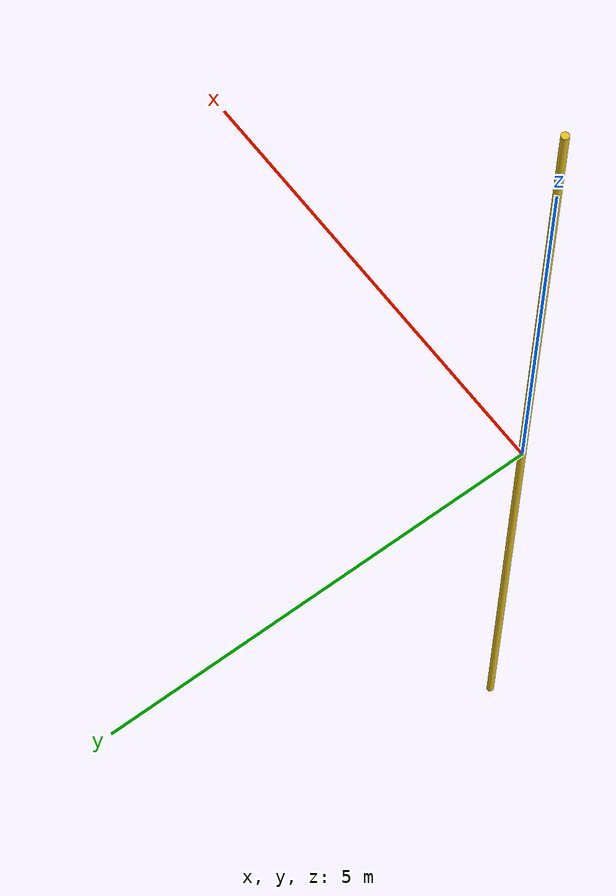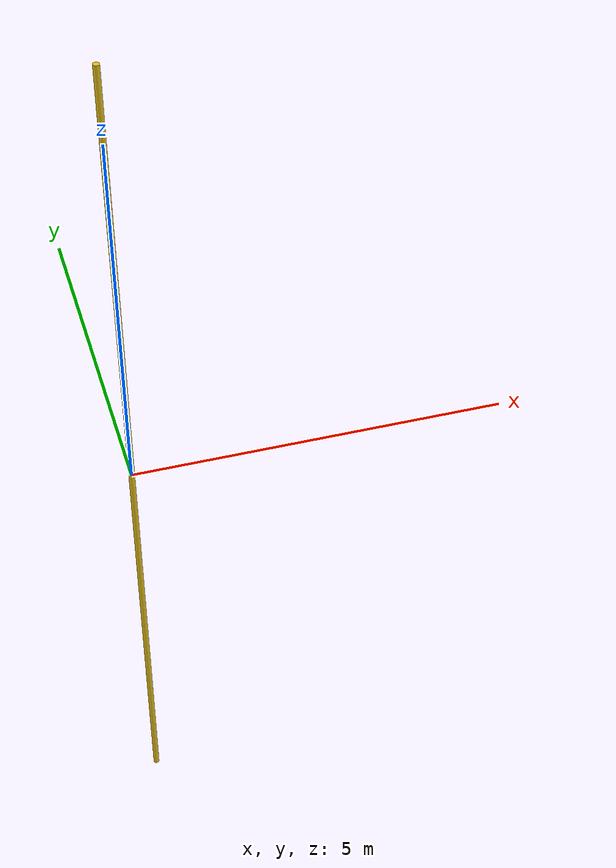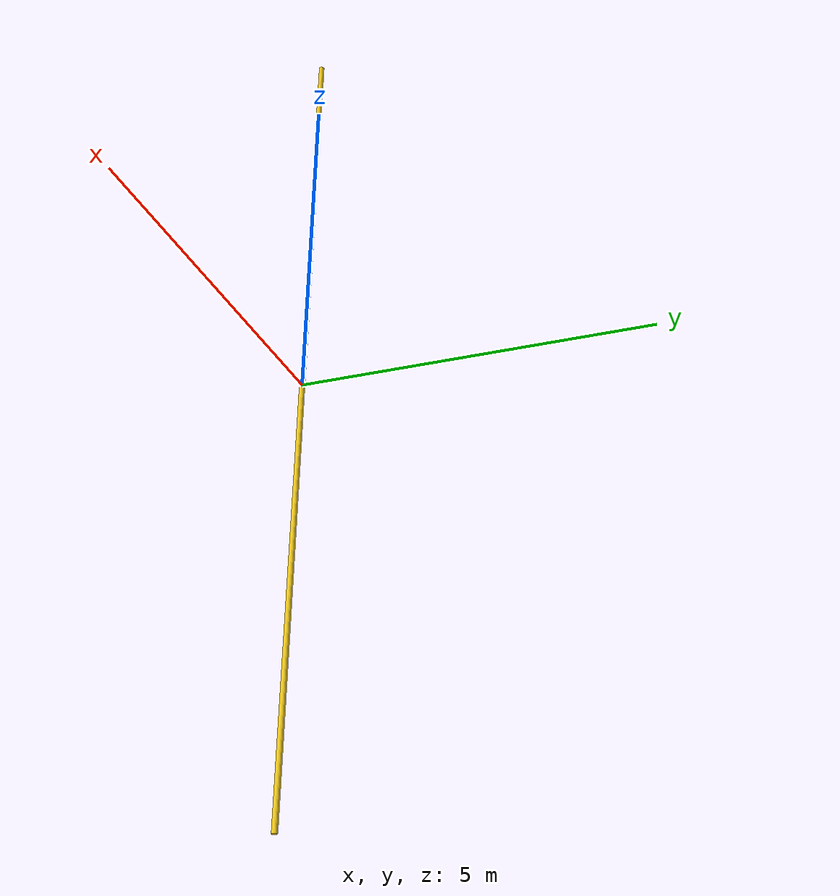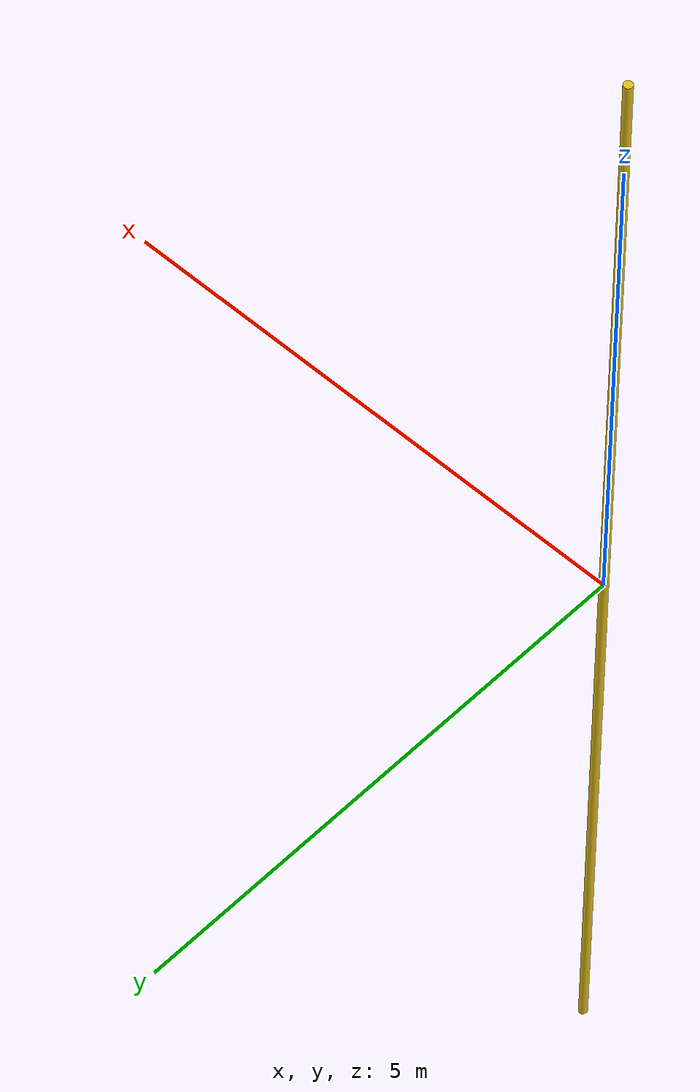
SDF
<?xml version="1.0"?>
<sdf version="1.10"><model name="wire_12p0m_yellow"><static>true</static>
<link name="link"><visual name="wire">
<geometry><cylinder><radius>0.04</radius><length>12.0</length></cylinder></geometry>
<material><ambient>0.720 0.600 0.080 1</ambient>
<diffuse>0.900 0.750 0.100 1</diffuse></material></visual></link></model></sdf>
